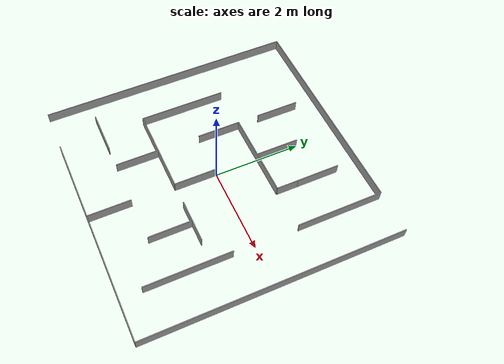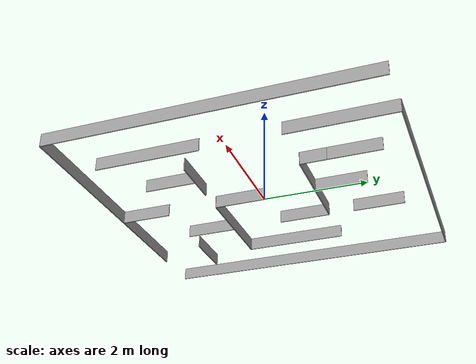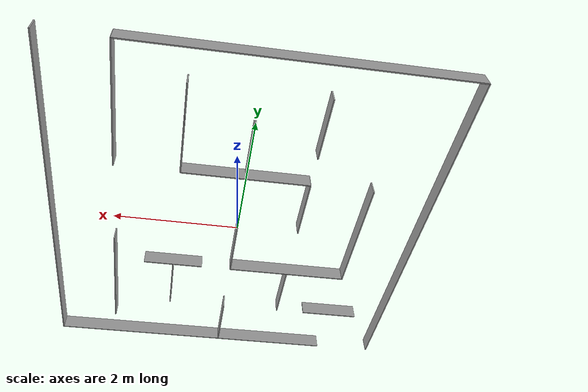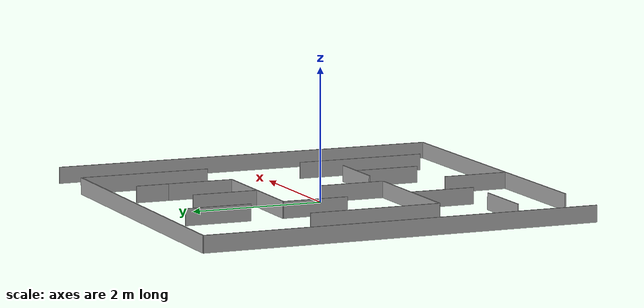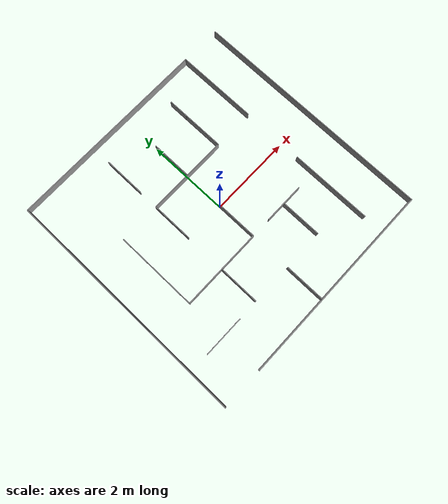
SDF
<?xml version='1.0'?>
<sdf version='1.9'>
  <model name='my_maze'>
    <pose>0 0 0 0 0 0</pose>

    <!-- ENCLOSING BOUNDARY WALLS (6m x 6m Bounds)               -->
    <!-- Opening size: 1.0m                                      -->
    <!-- Wall Height: 0.25m                                      -->

    <!-- Outer North Wall (EXIT GAP AT TOP RIGHT: x = 2.0 to 3.0) -->
    <link name='Wall_27'>
      <collision name='Wall_27_Collision'>
        <geometry><box><size>5.0 0.02 0.25</size></box></geometry>
        <pose>0 0 0.125 0 0 0</pose>
      </collision>
      <visual name='Wall_27_Visual'>
        <pose>0 0 0.125 0 0 0</pose>
        <geometry><box><size>5.0 0.02 0.25</size></box></geometry>
        <material>
          <ambient>0.6 0.6 0.6 1</ambient>
          <diffuse>0.6 0.6 0.6 1</diffuse>
          <specular>0.1 0.1 0.1 1</specular>
        </material>
      </visual>
      <pose>-0.5 3.0 0 0 0 0</pose>
    </link>

    <!-- Outer South Wall (ENTRANCE GAP AT BOTTOM LEFT: x = -3.0 to -2.0) -->
    <link name='Wall_54'>
      <collision name='Wall_54_Collision'>
        <geometry><box><size>5.0 0.02 0.25</size></box></geometry>
        <pose>0 0 0.125 0 0 0</pose>
      </collision>
      <visual name='Wall_54_Visual'>
        <pose>0 0 0.125 0 0 0</pose>
        <geometry><box><size>5.0 0.02 0.25</size></box></geometry>
        <material>
          <ambient>0.6 0.6 0.6 1</ambient>
          <diffuse>0.6 0.6 0.6 1</diffuse>
          <specular>0.1 0.1 0.1 1</specular>
        </material>
      </visual>
      <pose>0.5 -3.0 0 0 0 0</pose>
    </link>

    <!-- Outer West Wall (Fully Closed) -->
    <link name='Wall_Outer_West'>
      <collision name='Wall_Outer_West_Collision'>
        <geometry><box><size>6.0 0.02 0.25</size></box></geometry>
        <pose>0 0 0.125 0 0 0</pose>
      </collision>
      <visual name='Wall_Outer_West_Visual'>
        <pose>0 0 0.125 0 0 0</pose>
        <geometry><box><size>6.0 0.02 0.25</size></box></geometry>
        <material>
          <ambient>0.6 0.6 0.6 1</ambient>
          <diffuse>0.6 0.6 0.6 1</diffuse>
          <specular>0.1 0.1 0.1 1</specular>
        </material>
      </visual>
      <pose>-3.0 0 0 0 0 1.5708</pose>
    </link>

    <!-- Outer East Wall (Fully Closed) -->
    <link name='Wall_Outer_East'>
      <collision name='Wall_Outer_East_Collision'>
        <geometry><box><size>6.0 0.02 0.25</size></box></geometry>
        <pose>0 0 0.125 0 0 0</pose>
      </collision>
      <visual name='Wall_Outer_East_Visual'>
        <pose>0 0 0.125 0 0 0</pose>
        <geometry><box><size>6.0 0.02 0.25</size></box></geometry>
        <material>
          <ambient>0.6 0.6 0.6 1</ambient>
          <diffuse>0.6 0.6 0.6 1</diffuse>
          <specular>0.1 0.1 0.1 1</specular>
        </material>
      </visual>
      <pose>3.0 0 0 0 0 1.5708</pose>
    </link>

    <!-- GRID-ALIGNED INTERNAL WALLS                             -->

    <!-- Vertical Wall at x = -1.0, y = 2.0 (length 1.0m) -->
    <link name='Wall_29'>
      <collision name='Wall_29_Collision'>
        <geometry><box><size>1.0 0.02 0.25</size></box></geometry>
        <pose>0 0 0.125 0 0 0</pose>
      </collision>
      <visual name='Wall_29_Visual'>
        <pose>0 0 0.125 0 0 0</pose>
        <geometry><box><size>1.0 0.02 0.25</size></box></geometry>
        <material>
          <ambient>0.6 0.6 0.6 1</ambient>
          <diffuse>0.6 0.6 0.6 1</diffuse>
          <specular>0.1 0.1 0.1 1</specular>
        </material>
      </visual>
      <pose>-1.0 2.0 0 0 0 1.5708</pose>
    </link>

    <!-- Vertical Wall at x = 1.0, y = 2.0 (length 1.0m) -->
    <link name='Wall_31'>
      <collision name='Wall_31_Collision'>
        <geometry><box><size>1.0 0.02 0.25</size></box></geometry>
        <pose>0 0 0.125 0 0 0</pose>
      </collision>
      <visual name='Wall_31_Visual'>
        <pose>0 0 0.125 0 0 0</pose>
        <geometry><box><size>1.0 0.02 0.25</size></box></geometry>
        <material>
          <ambient>0.6 0.6 0.6 1</ambient>
          <diffuse>0.6 0.6 0.6 1</diffuse>
          <specular>0.1 0.1 0.1 1</specular>
        </material>
      </visual>
      <pose>1.0 2.0 0 0 0 1.5708</pose>
    </link>

    <!-- FIXED: Vertical Wall at x = 2.0, y = 2.0 (length 2.0m, spans y ∈ [1, 3]) -->
    <link name='Wall_35'>
      <collision name='Wall_35_Collision'>
        <geometry><box><size>2.0 0.02 0.25</size></box></geometry>
        <pose>0 0 0.125 0 0 0</pose>
      </collision>
      <visual name='Wall_35_Visual'>
        <pose>0 0 0.125 0 0 0</pose>
        <geometry><box><size>2.0 0.02 0.25</size></box></geometry>
        <material>
          <ambient>0.6 0.6 0.6 1</ambient>
          <diffuse>0.6 0.6 0.6 1</diffuse>
          <specular>0.1 0.1 0.1 1</specular>
        </material>
      </visual>
      <pose>2.0 2.0 0 0 0 1.5708</pose>
    </link>

    <!-- FIXED: Vertical Wall at x = -2.0, y = 0.0 (length 2.0m, spans y ∈ [-1, 1]) -->
    <link name='Wall_38'>
      <collision name='Wall_38_Collision'>
        <geometry><box><size>2.0 0.02 0.25</size></box></geometry>
        <pose>0 0 0.125 0 0 0</pose>
      </collision>
      <visual name='Wall_38_Visual'>
        <pose>0 0 0.125 0 0 0</pose>
        <geometry><box><size>2.0 0.02 0.25</size></box></geometry>
        <material>
          <ambient>0.6 0.6 0.6 1</ambient>
          <diffuse>0.6 0.6 0.6 1</diffuse>
          <specular>0.1 0.1 0.1 1</specular>
        </material>
      </visual>
      <pose>-2.0 0.0 0 0 0 1.5708</pose>
    </link>

    <!-- Horizontal Wall at y = -1.0, x = -1.0 (length 2.0m) -->
    <link name='Wall_39'>
      <collision name='Wall_39_Collision'>
        <geometry><box><size>2.0 0.02 0.25</size></box></geometry>
        <pose>0 0 0.125 0 0 0</pose>
      </collision>
      <visual name='Wall_39_Visual'>
        <pose>0 0 0.125 0 0 0</pose>
        <geometry><box><size>2.0 0.02 0.25</size></box></geometry>
        <material>
          <ambient>0.6 0.6 0.6 1</ambient>
          <diffuse>0.6 0.6 0.6 1</diffuse>
          <specular>0.1 0.1 0.1 1</specular>
        </material>
      </visual>
      <pose>-1.0 -1.0 0 0 0 0</pose>
    </link>

    <!-- Vertical Wall at x = -1.0, y = 0.5 (length 1.0m) -->
    <link name='Wall_41'>
      <collision name='Wall_41_Collision'>
        <geometry><box><size>1.0 0.02 0.25</size></box></geometry>
        <pose>0 0 0.125 0 0 0</pose>
      </collision>
      <visual name='Wall_41_Visual'>
        <pose>0 0 0.125 0 0 0</pose>
        <geometry><box><size>1.0 0.02 0.25</size></box></geometry>
        <material>
          <ambient>0.6 0.6 0.6 1</ambient>
          <diffuse>0.6 0.6 0.6 1</diffuse>
          <specular>0.1 0.1 0.1 1</specular>
        </material>
      </visual>
      <pose>-1.0 0.5 0 0 0 1.5708</pose>
    </link>

    <!-- Horizontal Wall at y = 1.0, x = 0.0 (length 2.0m) -->
    <link name='Wall_42'>
      <collision name='Wall_42_Collision'>
        <geometry><box><size>2.0 0.02 0.25</size></box></geometry>
        <pose>0 0 0.125 0 0 0</pose>
      </collision>
      <visual name='Wall_42_Visual'>
        <pose>0 0 0.125 0 0 0</pose>
        <geometry><box><size>2.0 0.02 0.25</size></box></geometry>
        <material>
          <ambient>0.6 0.6 0.6 1</ambient>
          <diffuse>0.6 0.6 0.6 1</diffuse>
          <specular>0.1 0.1 0.1 1</specular>
        </material>
      </visual>
      <pose>0.0 1.0 0 0 0 0</pose>
    </link>

    <!-- Vertical Wall at x = 1.0, y = 1.5 (length 1.0m) -->
    <link name='Wall_43'>
      <collision name='Wall_43_Collision'>
        <geometry><box><size>1.0 0.02 0.25</size></box></geometry>
        <pose>0 0 0.125 0 0 0</pose>
      </collision>
      <visual name='Wall_43_Visual'>
        <pose>0 0 0.125 0 0 0</pose>
        <geometry><box><size>1.0 0.02 0.25</size></box></geometry>
        <material>
          <ambient>0.6 0.6 0.6 1</ambient>
          <diffuse>0.6 0.6 0.6 1</diffuse>
          <specular>0.1 0.1 0.1 1</specular>
        </material>
      </visual>
      <pose>1.0 1.5 0 0 0 1.5708</pose>
    </link>

    <!-- Vertical Wall at x = 0.0, y = 1.5 (length 1.0m) -->
    <link name='Wall_45'>
      <collision name='Wall_45_Collision'>
        <geometry><box><size>1.0 0.02 0.25</size></box></geometry>
        <pose>0 0 0.125 0 0 0</pose>
      </collision>
      <visual name='Wall_45_Visual'>
        <pose>0 0 0.125 0 0 0</pose>
        <geometry><box><size>1.0 0.02 0.25</size></box></geometry>
        <material>
          <ambient>0.6 0.6 0.6 1</ambient>
          <diffuse>0.6 0.6 0.6 1</diffuse>
          <specular>0.1 0.1 0.1 1</specular>
        </material>
      </visual>
      <pose>0.0 1.5 0 0 0 1.5708</pose>
    </link>

    <!-- Vertical Wall at x = 0.0, y = -0.5 (length 1.0m) -->
    <link name='Wall_47'>
      <collision name='Wall_47_Collision'>
        <geometry><box><size>1.0 0.02 0.25</size></box></geometry>
        <pose>0 0 0.125 0 0 0</pose>
      </collision>
      <visual name='Wall_47_Visual'>
        <pose>0 0 0.125 0 0 0</pose>
        <geometry><box><size>1.0 0.02 0.25</size></box></geometry>
        <material>
          <ambient>0.6 0.6 0.6 1</ambient>
          <diffuse>0.6 0.6 0.6 1</diffuse>
          <specular>0.1 0.1 0.1 1</specular>
        </material>
      </visual>
      <pose>0.0 -0.5 0 0 0 1.5708</pose>
    </link>

    <!-- Horizontal Wall at y = -1.0, x = 1.0 (length 1.0m) -->
    <link name='Wall_48'>
      <collision name='Wall_48_Collision'>
        <geometry><box><size>1.0 0.02 0.25</size></box></geometry>
        <pose>0 0 0.125 0 0 0</pose>
      </collision>
      <visual name='Wall_48_Visual'>
        <pose>0 0 0.125 0 0 0</pose>
        <geometry><box><size>1.0 0.02 0.25</size></box></geometry>
        <material>
          <ambient>0.6 0.6 0.6 1</ambient>
          <diffuse>0.6 0.6 0.6 1</diffuse>
          <specular>0.1 0.1 0.1 1</specular>
        </material>
      </visual>
      <pose>1.0 -1.0 0 0 0 0</pose>
    </link>

    <!-- Vertical Wall at x = 1.0, y = -1.5 (length 1.0m) -->
    <link name='Wall_49'>
      <collision name='Wall_49_Collision'>
        <geometry><box><size>1.0 0.02 0.25</size></box></geometry>
        <pose>0 0 0.125 0 0 0</pose>
      </collision>
      <visual name='Wall_49_Visual'>
        <pose>0 0 0.125 0 0 0</pose>
        <geometry><box><size>1.0 0.02 0.25</size></box></geometry>
        <material>
          <ambient>0.6 0.6 0.6 1</ambient>
          <diffuse>0.6 0.6 0.6 1</diffuse>
          <specular>0.1 0.1 0.1 1</specular>
        </material>
      </visual>
      <pose>1.0 -1.5 0 0 0 1.5708</pose>
    </link>

    <!-- Vertical Wall at x = -1.0, y = -1.5 (length 1.0m) -->
    <link name='Wall_51'>
      <collision name='Wall_51_Collision'>
        <geometry><box><size>1.0 0.02 0.25</size></box></geometry>
        <pose>0 0 0.125 0 0 0</pose>
      </collision>
      <visual name='Wall_51_Visual'>
        <pose>0 0 0.125 0 0 0</pose>
        <geometry><box><size>1.0 0.02 0.25</size></box></geometry>
        <material>
          <ambient>0.6 0.6 0.6 1</ambient>
          <diffuse>0.6 0.6 0.6 1</diffuse>
          <specular>0.1 0.1 0.1 1</specular>
        </material>
      </visual>
      <pose>-1.0 -1.5 0 0 0 1.5708</pose>
    </link>

    <!-- FIXED: Vertical Wall at x = 2.0, y = -1.5 (length 2.0m, spans y ∈ [-2.5, -0.5]) -->
    <link name='Wall_53'>
      <collision name='Wall_53_Collision'>
        <geometry><box><size>2.0 0.02 0.25</size></box></geometry>
        <pose>0 0 0.125 0 0 0</pose>
      </collision>
      <visual name='Wall_53_Visual'>
        <pose>0 0 0.125 0 0 0</pose>
        <geometry><box><size>2.0 0.02 0.25</size></box></geometry>
        <material>
          <ambient>0.6 0.6 0.6 1</ambient>
          <diffuse>0.6 0.6 0.6 1</diffuse>
          <specular>0.1 0.1 0.1 1</specular>
        </material>
      </visual>
      <pose>2.0 -1.5 0 0 0 1.5708</pose>
    </link>

    <!-- Horizontal Wall at y = -2.0, x = -2.0 (length 1.0m) -->
    <link name='Wall_Turn_1'>
      <collision name='Wall_Turn_1_Collision'>
        <geometry><box><size>1.0 0.02 0.25</size></box></geometry>
        <pose>0 0 0.125 0 0 0</pose>
      </collision>
      <visual name='Wall_Turn_1_Visual'>
        <pose>0 0 0.125 0 0 0</pose>
        <geometry><box><size>1.0 0.02 0.25</size></box></geometry>
        <material>
          <ambient>0.6 0.6 0.6 1</ambient>
          <diffuse>0.6 0.6 0.6 1</diffuse>
          <specular>0.1 0.1 0.1 1</specular>
        </material>
      </visual>
      <pose>-2.0 -2.0 0 0 0 0</pose>
    </link>

    <!-- GRID-ALIGNED WALL INSIDE THE BLUE CIRCLE (Vertical wall at x = 0.0, y = -2.5, length 1.0m) -->
    <link name='Wall_Added_Blue_Circle'>
      <collision name='Wall_Added_Blue_Circle_Collision'>
        <geometry><box><size>1.0 0.02 0.25</size></box></geometry>
        <pose>0 0 0.125 0 0 0</pose>
      </collision>
      <visual name='Wall_Added_Blue_Circle_Visual'>
        <pose>0 0 0.125 0 0 0</pose>
        <geometry><box><size>1.0 0.02 0.25</size></box></geometry>
        <material>
          <ambient>0.6 0.6 0.6 1</ambient>
          <diffuse>0.6 0.6 0.6 1</diffuse>
          <specular>0.1 0.1 0.1 1</specular>
        </material>
      </visual>
      <pose>0.0 -2.5 0 0 0 1.5708</pose>
    </link>

    <static>true</static>
  </model>
</sdf>
